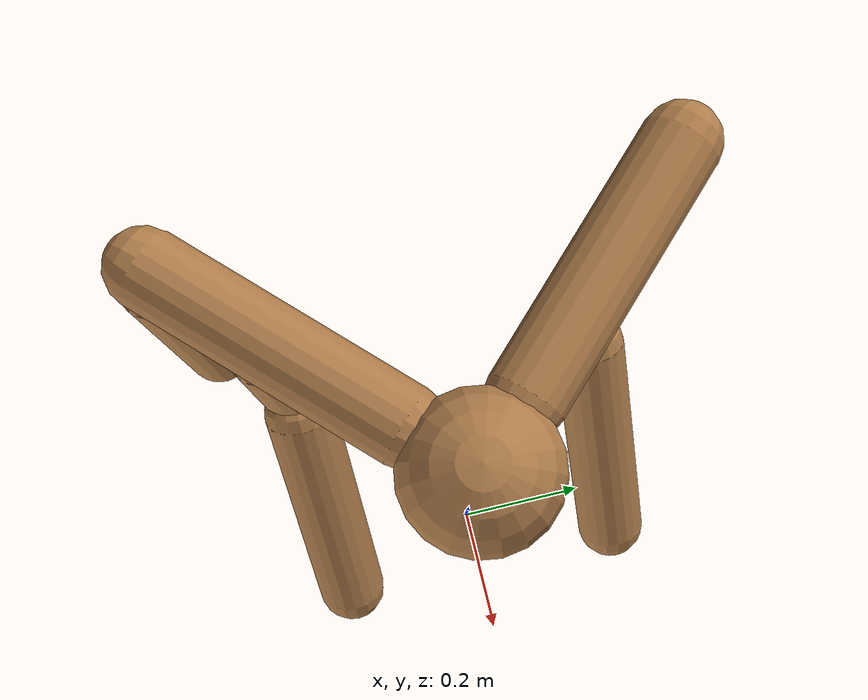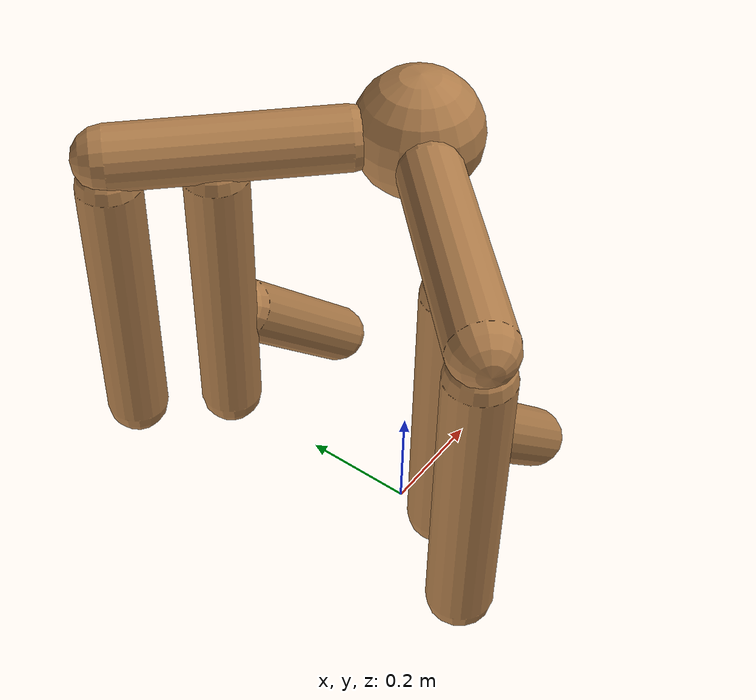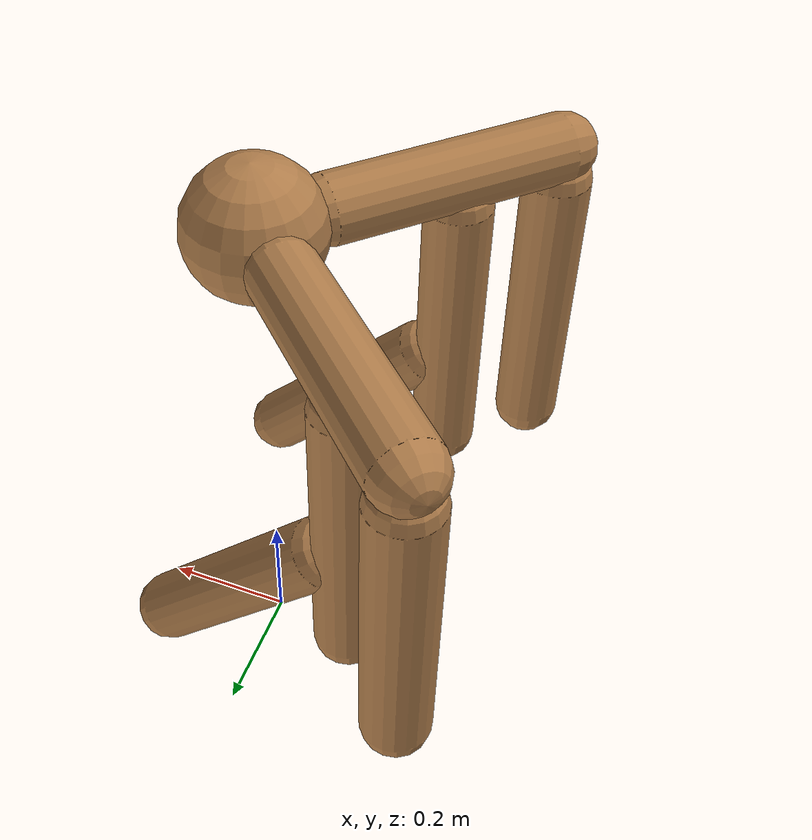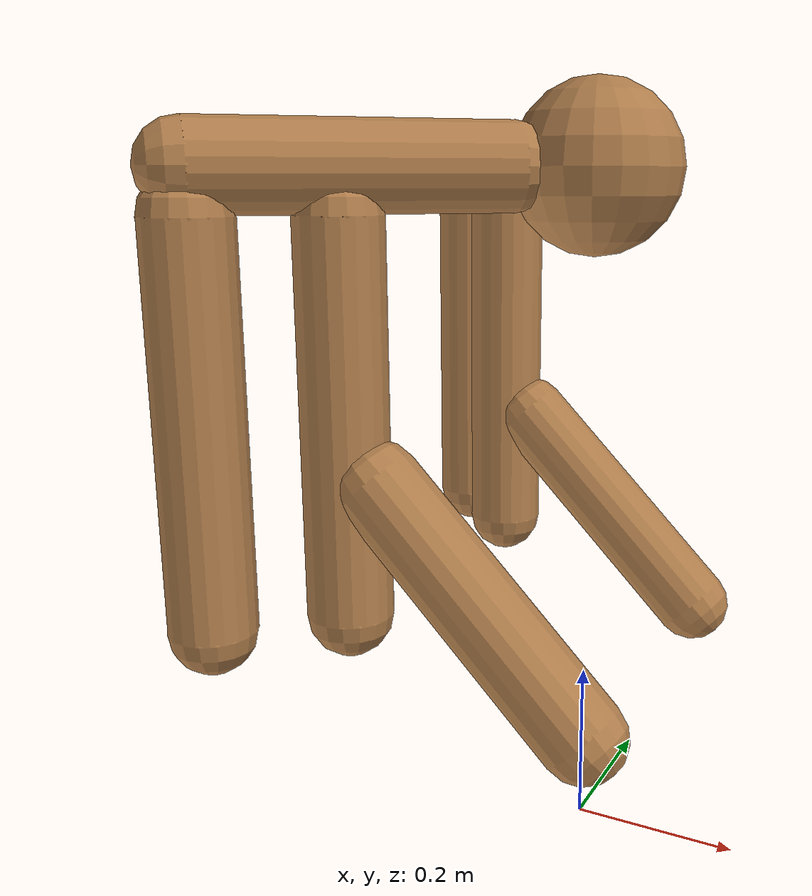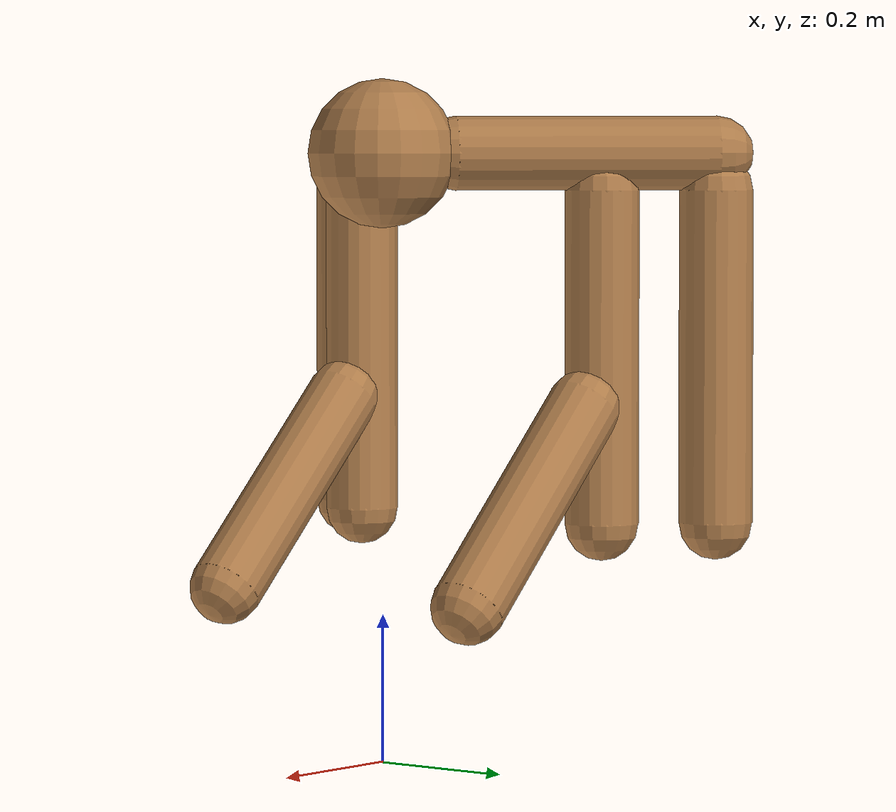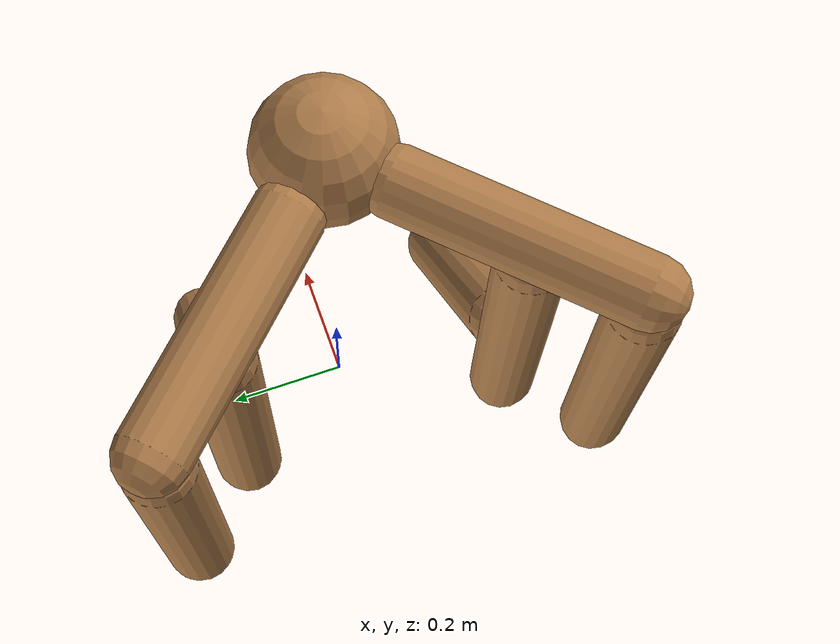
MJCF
<?xml version='1.0' encoding='UTF-8'?>
<!-- Universal Animal Template: unimal -->
<mujoco model="unimal">
  <compiler angle="degree"/>
  <size njmax="2000" nconmax="500"/>
  <option timestep=".005">
    <flag filterparent="disable"/>
  </option>
  <!-- Common defaults to make search space tractable -->
  <default>
    <!-- Define motor defaults -->
    <motor ctrlrange="-1 1" ctrllimited="true"/>
    <!-- Define joint defaults -->
    <default class="normal_joint">
      <joint type="hinge" damping="1" stiffness="1" armature="1" limited="true" range="-120 120" solimplimit="0 0.99 0.01"/>
    </default>
    <default class="walker_joint">
      <joint type="hinge" damping="0.2" stiffness="1" armature=".01" limited="true" range="-120 120" solimplimit="0 0.99 0.01"/>
    </default>
    <default class="stiff_joint">
      <joint type="hinge" damping="5" stiffness="10" armature=".01" limited="true" solimplimit="0 0.99 0.01"/>
    </default>
    <default class="free">
      <joint limited="false" damping="0" armature="0" stiffness="0"/>
    </default>
    <default class="growth_site">
      <site size="1e-6 1e-6 1e-6"/>
    </default>
    <default class="torso_growth_site">
      <site size="1e-6 1e-6 1e-6"/>
    </default>
    <default class="mirror_growth_site">
      <site size="1e-6 1e-6 1e-6"/>
    </default>
    <default class="btm_pos_site">
      <site size="1e-6 1e-6 1e-6"/>
    </default>
    <default class="box_face_site">
      <site size="1e-6 1e-6 1e-6"/>
    </default>
    <default class="imu_vel">
      <site type="box" size="0.05" rgba="1 0 0 0"/>
    </default>
    <default class="touch_site">
      <site group="3" rgba="0 0 1 .3"/>
    </default>
    <default class="food_site">
      <site material="food" size="0.15"/>
    </default>
    <!-- Define geom defaults -->
    <geom type="capsule" condim="3" friction="0.7 0.1 0.1" material="self"/>
  </default>
  <worldbody>
    <light diffuse="1 1 1" directional="true" exponent="1" pos="0 0 8" specular="0.1 0.1 0.1" dir="0 0 -1"/>
    <!-- Programatically generated xml goes here -->
    <body name="torso/0" pos="0 0 0.82">
      <joint name="root" type="free" class="free"/>
      <site name="root" class="imu_vel"/>
      <geom name="torso/0" type="sphere" size="0.1" condim="3" density="700"/>
      <camera name="side" pos="0 -7 2" xyaxes="1 0 0 0 1 2" mode="trackcom"/>
      <site name="torso/0" class="growth_site" pos="0 0 0"/>
      <site name="torso/btm_pos/0" class="btm_pos_site" pos="0 0 -0.1"/>
      <site name="torso/touch/0" class="touch_site" size="0.11"/>
      <site name="torso/horizontal_y/0" class="torso_growth_site" pos="-0.1 0 0"/>
      <body name="limb/0" pos="-0.07 0.07 0.0">
        <joint name="limbx/0" type="hinge" class="normal_joint" range="0 90" pos="0.04 -0.04 0.0" axis="0.5 0.5 -0.7071"/>
        <joint name="limby/0" type="hinge" class="normal_joint" range="-30 60" pos="0.04 -0.04 0.0" axis="0.5 0.5 0.7071"/>
        <geom name="limb/0" type="capsule" fromto="0.0 0.0 0.0 -0.25 0.25 0.0" size="0.05" density="1000"/>
        <site name="limb/mid/0" class="mirror_growth_site" pos="-0.14 0.14 0.0"/>
        <site name="limb/btm/0" class="mirror_growth_site" pos="-0.25 0.25 0.0"/>
        <site name="limb/btm_pos/0" class="btm_pos_site" pos="-0.25 0.25 0.0"/>
        <site name="limb/touch/0" class="touch_site" size="0.060000000000000005" fromto="0.0 0.0 0.0 -0.25 0.25 0.0" type="capsule"/>
        <body name="limb/49" pos="-0.14 0.14 -0.05">
          <joint name="limbx/49" type="hinge" class="normal_joint" range="-90 0" pos="0.0 0.0 0.05" axis="1.0 0.0 0.0"/>
          <geom name="limb/49" type="capsule" fromto="0.0 0.0 0.0 0.0 0.0 -0.45" size="0.05" density="1000"/>
          <site name="limb/mid/49" class="mirror_growth_site" pos="0.0 0.0 -0.25"/>
          <site name="limb/btm/49" class="mirror_growth_site" pos="0.0 0.0 -0.45"/>
          <site name="limb/btm_pos/49" class="btm_pos_site" pos="0.0 0.0 -0.5"/>
          <site name="limb/touch/49" class="touch_site" size="0.060000000000000005" fromto="0.0 0.0 0.0 0.0 0.0 -0.45" type="capsule"/>
          <body name="limb/51" pos="0.04 0.0 -0.29">
            <joint name="limbx/51" type="hinge" class="normal_joint" range="-30 30" pos="-0.04 0.0 0.04" axis="0.7071 0.0 0.7071"/>
            <geom name="limb/51" type="capsule" fromto="0.0 0.0 0.0 0.25 0.0 -0.25" size="0.05" density="1000"/>
            <site name="limb/mid/51" class="mirror_growth_site" pos="0.14 0.0 -0.14"/>
            <site name="limb/btm/51" class="mirror_growth_site" pos="0.25 0.0 -0.25"/>
            <site name="limb/btm_pos/51" class="btm_pos_site" pos="0.28 0.0 -0.28"/>
            <site name="limb/touch/51" class="touch_site" size="0.060000000000000005" fromto="0.0 0.0 0.0 0.25 0.0 -0.25" type="capsule"/>
          </body>
        </body>
        <body name="limb/53" pos="-0.25 0.25 -0.05">
          <joint name="limbx/53" type="hinge" class="normal_joint" range="-30 0" pos="0.0 0.0 0.05" axis="1.0 0.0 0.0"/>
          <geom name="limb/53" type="capsule" fromto="0.0 0.0 0.0 0.0 0.0 -0.45" size="0.05" density="1000"/>
          <site name="limb/mid/53" class="mirror_growth_site" pos="0.0 0.0 -0.25"/>
          <site name="limb/btm/53" class="mirror_growth_site" pos="0.0 0.0 -0.45"/>
          <site name="limb/btm_pos/53" class="btm_pos_site" pos="0.0 0.0 -0.5"/>
          <site name="limb/touch/53" class="touch_site" size="0.060000000000000005" fromto="0.0 0.0 0.0 0.0 0.0 -0.45" type="capsule"/>
        </body>
      </body>
      <body name="limb/1" pos="-0.07 -0.07 0.0">
        <joint name="limbx/1" type="hinge" class="normal_joint" range="0 90" pos="0.04 0.04 0.0" axis="0.5 -0.5 -0.7071"/>
        <joint name="limby/1" type="hinge" class="normal_joint" range="-30 60" pos="0.04 0.04 0.0" axis="-0.5 0.5 -0.7071"/>
        <geom name="limb/1" type="capsule" fromto="0.0 0.0 0.0 -0.25 -0.25 0.0" size="0.05" density="1000"/>
        <site name="limb/mid/1" class="mirror_growth_site" pos="-0.14 -0.14 0.0"/>
        <site name="limb/btm/1" class="mirror_growth_site" pos="-0.25 -0.25 0.0"/>
        <site name="limb/btm_pos/1" class="btm_pos_site" pos="-0.25 -0.25 0.0"/>
        <site name="limb/touch/1" class="touch_site" size="0.060000000000000005" fromto="0.0 0.0 0.0 -0.25 -0.25 0.0" type="capsule"/>
        <body name="limb/50" pos="-0.14 -0.14 -0.05">
          <joint name="limbx/50" type="hinge" class="normal_joint" range="-90 0" pos="0.0 0.0 0.05" axis="1.0 0.0 0.0"/>
          <geom name="limb/50" type="capsule" fromto="0.0 0.0 0.0 0.0 0.0 -0.45" size="0.05" density="1000"/>
          <site name="limb/mid/50" class="mirror_growth_site" pos="0.0 0.0 -0.25"/>
          <site name="limb/btm/50" class="mirror_growth_site" pos="0.0 0.0 -0.45"/>
          <site name="limb/btm_pos/50" class="btm_pos_site" pos="0.0 0.0 -0.5"/>
          <site name="limb/touch/50" class="touch_site" size="0.060000000000000005" fromto="0.0 0.0 0.0 0.0 0.0 -0.45" type="capsule"/>
          <body name="limb/52" pos="0.04 0.0 -0.29">
            <joint name="limbx/52" type="hinge" class="normal_joint" range="-30 30" pos="-0.04 0.0 0.04" axis="0.7071 0.0 0.7071"/>
            <geom name="limb/52" type="capsule" fromto="0.0 0.0 0.0 0.25 0.0 -0.25" size="0.05" density="1000"/>
            <site name="limb/mid/52" class="mirror_growth_site" pos="0.14 0.0 -0.14"/>
            <site name="limb/btm/52" class="mirror_growth_site" pos="0.25 0.0 -0.25"/>
            <site name="limb/btm_pos/52" class="btm_pos_site" pos="0.28 0.0 -0.28"/>
            <site name="limb/touch/52" class="touch_site" size="0.060000000000000005" fromto="0.0 0.0 0.0 0.25 0.0 -0.25" type="capsule"/>
          </body>
        </body>
        <body name="limb/54" pos="-0.25 -0.25 -0.05">
          <joint name="limbx/54" type="hinge" class="normal_joint" range="-30 0" pos="0.0 0.0 0.05" axis="1.0 0.0 0.0"/>
          <geom name="limb/54" type="capsule" fromto="0.0 0.0 0.0 0.0 0.0 -0.45" size="0.05" density="1000"/>
          <site name="limb/mid/54" class="mirror_growth_site" pos="0.0 0.0 -0.25"/>
          <site name="limb/btm/54" class="mirror_growth_site" pos="0.0 0.0 -0.45"/>
          <site name="limb/btm_pos/54" class="btm_pos_site" pos="0.0 0.0 -0.5"/>
          <site name="limb/touch/54" class="touch_site" size="0.060000000000000005" fromto="0.0 0.0 0.0 0.0 0.0 -0.45" type="capsule"/>
        </body>
      </body>
    </body>
  </worldbody>
  <actuator>
    <motor joint="limbx/0" gear="300" name="limbx/0"/>
    <motor joint="limby/0" gear="150" name="limby/0"/>
    <motor joint="limbx/49" gear="200" name="limbx/49"/>
    <motor joint="limbx/51" gear="200" name="limbx/51"/>
    <motor joint="limbx/53" gear="300" name="limbx/53"/>
    <motor joint="limbx/1" gear="300" name="limbx/1"/>
    <motor joint="limby/1" gear="150" name="limby/1"/>
    <motor joint="limbx/50" gear="200" name="limbx/50"/>
    <motor joint="limbx/52" gear="200" name="limbx/52"/>
    <motor joint="limbx/54" gear="300" name="limbx/54"/>
  </actuator>
  <sensor>
    <accelerometer name="torso_accel" site="root"/>
    <gyro name="torso_gyro" site="root"/>
    <velocimeter name="torso_vel" site="root"/>
    <subtreeangmom name="unimal_am" body="torso/0"/>
    <touch name="torso/0" site="torso/touch/0"/>
    <touch name="limb/0" site="limb/touch/0"/>
    <touch name="limb/49" site="limb/touch/49"/>
    <touch name="limb/51" site="limb/touch/51"/>
    <touch name="limb/53" site="limb/touch/53"/>
    <touch name="limb/1" site="limb/touch/1"/>
    <touch name="limb/50" site="limb/touch/50"/>
    <touch name="limb/52" site="limb/touch/52"/>
    <touch name="limb/54" site="limb/touch/54"/>
  </sensor>
  <!-- Add hfield assets -->
  <asset/>
  <!-- List of contacts to exclude -->
  <contact/>
  <!-- Define material, texture etc -->
  <asset>
    <material name="grid" texture="grid" texrepeat="1 1" texuniform="true" reflectance="0.1"/>
    <material name="hfield" texture="hfield" texrepeat="1 1" texuniform="true" reflectance="0.1"/>
    <material name="wall" texture="wall" texrepeat="1 1" texuniform="true" reflectance=".5"/>
    <material name="platform" texture="platform" texrepeat="1 1" texuniform="true" reflectance=".5"/>
    <material name="boundary" texture="boundary" texrepeat="1 1" texuniform="true" reflectance=".5"/>
    <material name="jump" texture="jump" texrepeat="1 1" texuniform="true" reflectance=".5"/>
    <material name="goal" rgba="1 0 0 1"/>
    <material name="food" rgba="0 0 1 1" emission="1"/>
    <material name="init_position" rgba="0 1 0 0.7"/>
    <material name="self" rgba=".7 .5 .3 1"/>
    <material name="self_invisible" rgba=".7 .5 .3 0"/>
    <material name="self_default" rgba=".7 .5 .3 1"/>
    <material name="self_highlight" rgba="0 .5 .3 1"/>
    <material name="effector" rgba=".7 .4 .2 1"/>
    <material name="effector_default" rgba=".7 .4 .2 1"/>
    <material name="effector_highlight" rgba="0 .5 .3 1"/>
    <material name="decoration" rgba=".3 .5 .7 1"/>
    <material name="eye" rgba="0 .2 1 1"/>
    <material name="target" rgba=".6 .3 .3 1"/>
    <material name="target_default" rgba=".6 .3 .3 1"/>
    <material name="target_highlight" rgba=".6 .3 .3 .4"/>
    <material name="site" rgba=".5 .5 .5 .3"/>
    <material name="ball" texture="ball"/>
  </asset>
  <asset>
    <texture name="grid" type="2d" builtin="checker" rgb1="0.4 0.4 0.4" rgb2="0.4 0.4 0.4" width="300" height="300" mark="edge" markrgb="0.2 0.2 0.2"/>
    <texture name="hfield" type="2d" builtin="checker" rgb1="0.4 0.4 0.4" rgb2="0.4 0.4 0.4" width="300" height="300" mark="edge" markrgb="0.2 0.2 0.2"/>
    <texture name="wall" type="2d" builtin="flat" rgb1="0.9 0.7 0" rgb2="0.9 0.7 0" width="300" height="300"/>
    <texture name="platform" type="2d" builtin="flat" rgb1="0.3 0 0.8" rgb2="0.3 0 0.8" width="300" height="300"/>
    <texture name="boundary" type="2d" builtin="flat" rgb1="0.3 0.3 0.3" rgb2="0.3 0.3 0.3" width="300" height="300"/>
    <texture name="jump" type="2d" builtin="flat" rgb1="0.3 0.3 0.3" rgb2="0.3 0.3 0.3" width="300" height="300"/>
    <texture name="skybox" type="skybox" builtin="gradient" rgb1="1 1 1" rgb2="0.6 0.6 0.6" width="800" height="800"/>
    <texture name="ball" builtin="checker" mark="cross" width="151" height="151" rgb1="0.1 0.1 0.1" rgb2="0.9 0.9 0.9" markrgb="1 1 1"/>
  </asset>
  <visual>
    <headlight ambient="0.6 0.6 0.6" diffuse="0.3 0.3 0.3" specular="0 0 0"/>
    <map znear=".01" shadowclip="0.5"/>
    <quality shadowsize="16384"/>
  </visual>
</mujoco>
